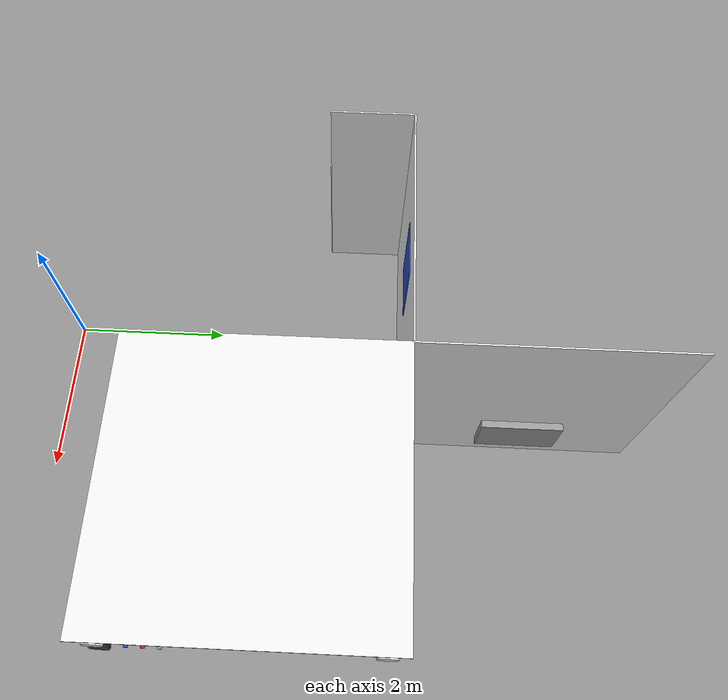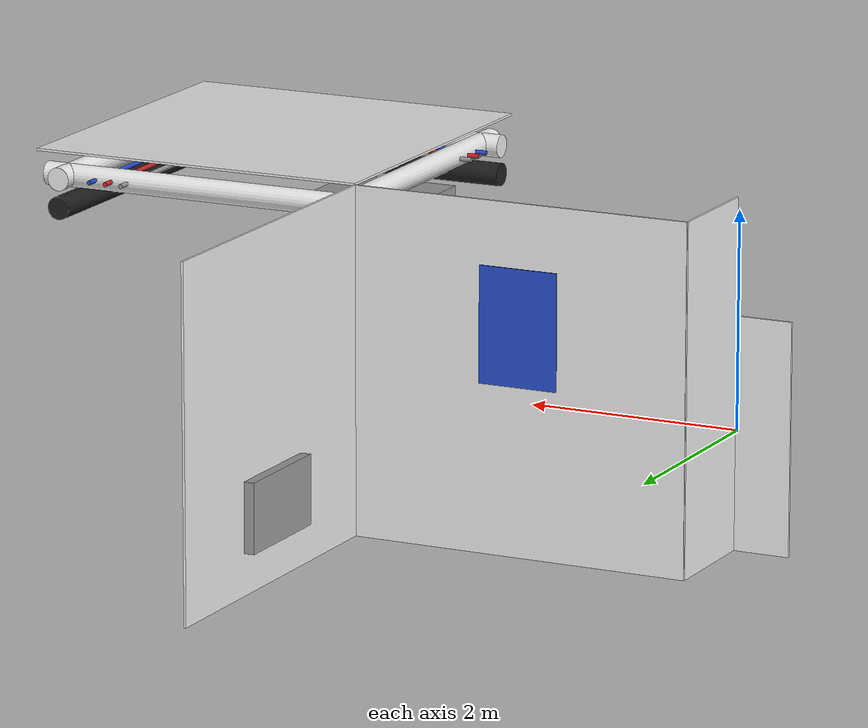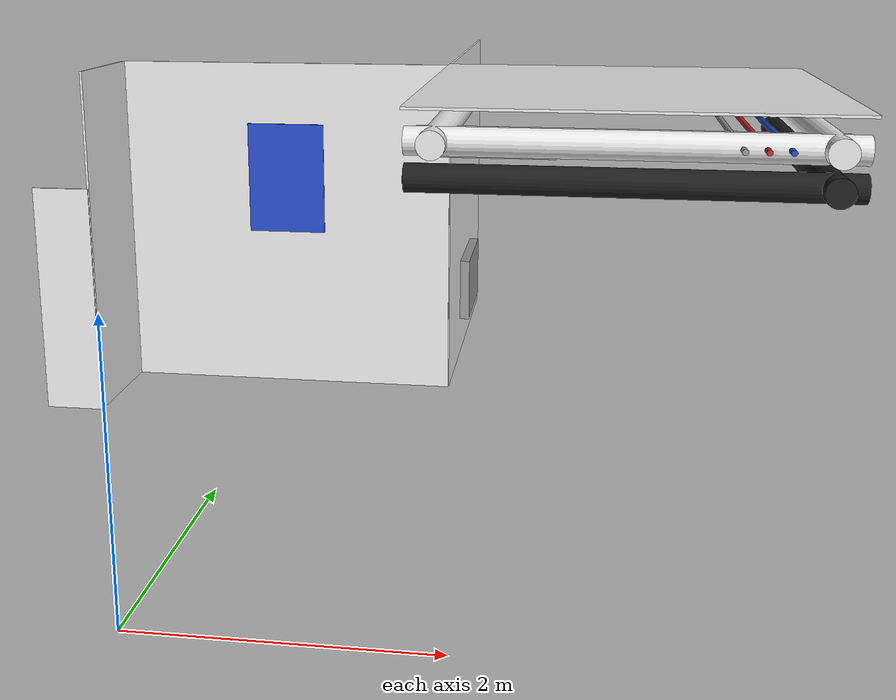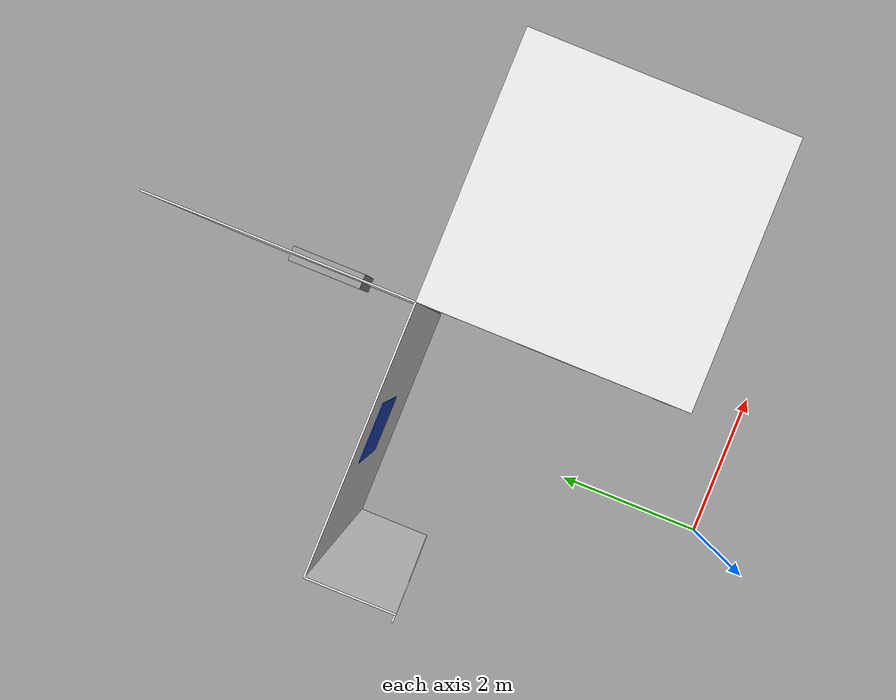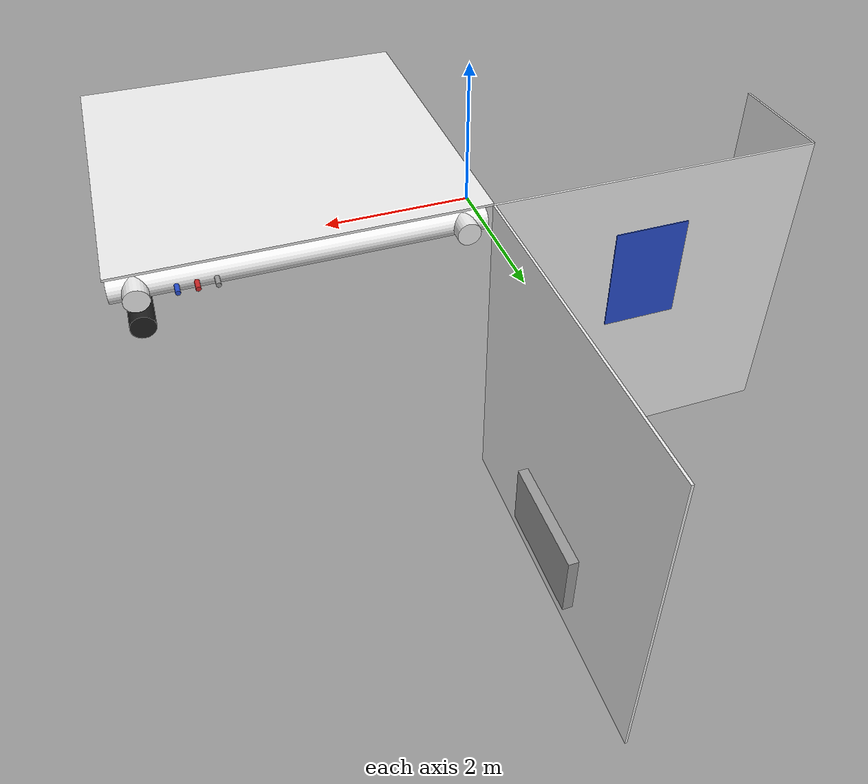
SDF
<sdf version="1.6">
 <world name="default">
  <model name="wall_front_0_1_0_2">
   <static>1</static>
   <pose>0.0 4.5 1.5 0.0 0.0 0.0</pose>
   <link name="link">
    <collision name="collision"><geometry><box><size>3.0 0.02 3.0</size></box></geometry></collision>
    <visual name="visual">
     <material>
      <script><name>Gazebo/White</name><uri>file://media/materials/scripts/gazebo.material</uri></script>
     </material>
     <geometry><box><size>3.0 0.02 3.0</size></box></geometry>
    </visual>
   </link>
  </model>
  <model name="panel_0_1_0_2">
   <static>1</static>
   <pose>0.0 4.5 1.95 0.0 0.0 1.57</pose>
   <link name="link">
    <collision name="collision"><geometry><box><size>0.04 0.7 1</size></box></geometry></collision>
    <visual name="visual">
     <material>
      <script><name>Gazebo/Blue</name><uri>file://media/materials/scripts/gazebo.material</uri></script>
     </material>
     <geometry><box><size>0.04 0.7 1</size></box></geometry>
    </visual>
   </link>
  </model>
  <model name="wall_left_front_left_0_1_0_2">
   <static>1</static>
   <pose>-1.5 4.0 1.5 0.0 0.0 1.57</pose>
   <link name="link">
    <collision name="collision"><geometry><box><size>1.0 0.02 3.0</size></box></geometry></collision>
    <visual name="visual">
     <material>
      <script><name>Gazebo/White</name><uri>file://media/materials/scripts/gazebo.material</uri></script>
     </material>
     <geometry><box><size>1.0 0.02 3.0</size></box></geometry>
    </visual>
   </link>
  </model>
  <model name="wall_left_inside_left_0_1_0_2">
   <static>1</static>
   <pose>-1.75 3.5 1.0 0.0 0.0 0.0</pose>
   <link name="link">
    <collision name="collision"><geometry><box><size>0.5 0.02 2</size></box></geometry></collision>
    <visual name="visual">
     <material>
      <script><name>Gazebo/White</name><uri>file://media/materials/scripts/gazebo.material</uri></script>
     </material>
     <geometry><box><size>0.5 0.02 2</size></box></geometry>
    </visual>
   </link>
  </model>
  <model name="wall_top_1_1_0_3">
   <static>1</static>
   <pose>3.0 3.0 3.0 1.57 0.0 -1.57</pose>
   <link name="link">
    <collision name="collision"><geometry><box><size>3.0 0.02 3.0</size></box></geometry></collision>
    <visual name="visual">
     <material>
      <script><name>Gazebo/White</name><uri>file://media/materials/scripts/gazebo.material</uri></script>
     </material>
     <geometry><box><size>3.0 0.02 3.0</size></box></geometry>
    </visual>
   </link>
  </model>
  <model name="ceiling_1_1_1_0_3">
   <pose>2.0 3.0 2.55 0.0 0.0 -1.57</pose>
   <link name="link_1">
    <visual name="visual">
     <geometry><box><size>0.8 1 0.1</size></box></geometry>
     <material>
      <script><uri>file://media/materials/scripts/gazebo.material</uri><name>Gazebo/Grey</name></script>
     </material>
    </visual>
    <collision name="collision"><geometry><box><size>0.8 1 0.1</size></box></geometry></collision>
   </link>
   <static>1</static>
  </model>
  <model name="white_pipe_left_1_1_0_3">
   <static>1</static>
   <pose>3.0 3.0 2.76 0.0 0.0 -1.57</pose>
   <link name="link_0">
    <visual name="visual">
     <pose>-1.3 0 0 1.57 0 0</pose>
     <geometry><cylinder><radius>0.1</radius><length>3.0</length></cylinder></geometry>
     <material>
      <script><uri>file://media/materials/scripts/gazebo.material</uri><name>Gazebo/White</name></script>
     </material>
    </visual>
    <collision name="collision">
     <pose>-1.3 0 0 1.57 0 0</pose>
     <geometry><cylinder><radius>0.1</radius><length>3.0</length></cylinder></geometry>
    </collision>
   </link>
  </model>
  <model name="white_pipe_right_1_1_0_3">
   <static>1</static>
   <pose>3.0 3.0 2.76 0.0 0.0 -1.57</pose>
   <link name="link_0">
    <visual name="visual">
     <pose>1.3 0 0 1.57 0 0</pose>
     <geometry><cylinder><radius>0.1</radius><length>3.0</length></cylinder></geometry>
     <material>
      <script><uri>file://media/materials/scripts/gazebo.material</uri><name>Gazebo/White</name></script>
     </material>
    </visual>
    <collision name="collision">
     <pose>1.3 0 0 1.57 0 0</pose>
     <geometry><cylinder><radius>0.1</radius><length>3.0</length></cylinder></geometry>
    </collision>
   </link>
  </model>
  <model name="black_pipe_right_1_1_0_3">
   <static>1</static>
   <pose>3.0 3.0 2.76 0.0 0.0 -1.57</pose>
   <link name="link_0">
    <visual name="visual">
     <pose>1.3 0 -0.25 1.57 0 0</pose>
     <geometry><cylinder><radius>0.1</radius><length>3.0</length></cylinder></geometry>
     <material>
      <script><uri>file://media/materials/scripts/gazebo.material</uri><name>Gazebo/Black</name></script>
     </material>
    </visual>
    <collision name="collision">
     <pose>1.3 0 -0.25 1.57 0 0</pose>
     <geometry><cylinder><radius>0.1</radius><length>3.0</length></cylinder></geometry>
    </collision>
   </link>
  </model>
  <model name="grey_pipe_right_1_1_0_3">
   <static>1</static>
   <pose>3.0 3.0 2.76 0.0 0.0 -1.57</pose>
   <link name="link_0">
    <visual name="visual">
     <pose>0.7 0 0 1.57 0 0</pose>
     <geometry><cylinder><radius>0.02</radius><length>3.0</length></cylinder></geometry>
     <material>
      <script><uri>file://media/materials/scripts/gazebo.material</uri><name>Gazebo/Grey</name></script>
     </material>
    </visual>
    <collision name="collision">
     <pose>0.7 0 0 1.57 0 0</pose>
     <geometry><cylinder><radius>0.02</radius><length>3.0</length></cylinder></geometry>
    </collision>
   </link>
  </model>
  <model name="red_pipe_right_1_1_0_3">
   <static>1</static>
   <pose>3.0 3.0 2.76 0.0 0.0 -1.57</pose>
   <link name="link_0">
    <visual name="visual">
     <pose>0.85 0 0 1.57 0 0</pose>
     <geometry><cylinder><radius>0.02</radius><length>3.0</length></cylinder></geometry>
     <material>
      <script><uri>file://media/materials/scripts/gazebo.material</uri><name>Gazebo/Red</name></script>
     </material>
    </visual>
    <collision name="collision">
     <pose>0.85 0 0 1.57 0 0</pose>
     <geometry><cylinder><radius>0.02</radius><length>3.0</length></cylinder></geometry>
    </collision>
   </link>
  </model>
  <model name="blue_pipe_right_1_1_0_3">
   <static>1</static>
   <pose>3.0 3.0 2.76 0.0 0.0 -1.57</pose>
   <link name="link_0">
    <visual name="visual">
     <pose>1 0 0 1.57 0 0</pose>
     <geometry><cylinder><radius>0.02</radius><length>3.0</length></cylinder></geometry>
     <material>
      <script><uri>file://media/materials/scripts/gazebo.material</uri><name>Gazebo/Blue</name></script>
     </material>
    </visual>
    <collision name="collision">
     <pose>1 0 0 1.57 0 0</pose>
     <geometry><cylinder><radius>0.02</radius><length>3.0</length></cylinder></geometry>
    </collision>
   </link>
  </model>
  <model name="white_pipe_left_1_1_1_0_3">
   <static>1</static>
   <pose>3.0 3.0 2.76 0.0 0.0 0.0</pose>
   <link name="link_0">
    <visual name="visual">
     <pose>-1.3 0 0 1.57 0 0</pose>
     <geometry><cylinder><radius>0.1</radius><length>3.0</length></cylinder></geometry>
     <material>
      <script><uri>file://media/materials/scripts/gazebo.material</uri><name>Gazebo/White</name></script>
     </material>
    </visual>
    <collision name="collision">
     <pose>-1.3 0 0 1.57 0 0</pose>
     <geometry><cylinder><radius>0.1</radius><length>3.0</length></cylinder></geometry>
    </collision>
   </link>
  </model>
  <model name="white_pipe_right_1_1_1_0_3">
   <static>1</static>
   <pose>3.0 3.0 2.76 0.0 0.0 0.0</pose>
   <link name="link_0">
    <visual name="visual">
     <pose>1.3 0 0 1.57 0 0</pose>
     <geometry><cylinder><radius>0.1</radius><length>3.0</length></cylinder></geometry>
     <material>
      <script><uri>file://media/materials/scripts/gazebo.material</uri><name>Gazebo/White</name></script>
     </material>
    </visual>
    <collision name="collision">
     <pose>1.3 0 0 1.57 0 0</pose>
     <geometry><cylinder><radius>0.1</radius><length>3.0</length></cylinder></geometry>
    </collision>
   </link>
  </model>
  <model name="black_pipe_right_1_1_1_0_3">
   <static>1</static>
   <pose>3.0 3.0 2.76 0.0 0.0 0.0</pose>
   <link name="link_0">
    <visual name="visual">
     <pose>1.3 0 -0.25 1.57 0 0</pose>
     <geometry><cylinder><radius>0.1</radius><length>3.0</length></cylinder></geometry>
     <material>
      <script><uri>file://media/materials/scripts/gazebo.material</uri><name>Gazebo/Black</name></script>
     </material>
    </visual>
    <collision name="collision">
     <pose>1.3 0 -0.25 1.57 0 0</pose>
     <geometry><cylinder><radius>0.1</radius><length>3.0</length></cylinder></geometry>
    </collision>
   </link>
  </model>
  <model name="grey_pipe_right_1_1_1_0_3">
   <static>1</static>
   <pose>3.0 3.0 2.76 0.0 0.0 0.0</pose>
   <link name="link_0">
    <visual name="visual">
     <pose>0.7 0 0 1.57 0 0</pose>
     <geometry><cylinder><radius>0.02</radius><length>3.0</length></cylinder></geometry>
     <material>
      <script><uri>file://media/materials/scripts/gazebo.material</uri><name>Gazebo/Grey</name></script>
     </material>
    </visual>
    <collision name="collision">
     <pose>0.7 0 0 1.57 0 0</pose>
     <geometry><cylinder><radius>0.02</radius><length>3.0</length></cylinder></geometry>
    </collision>
   </link>
  </model>
  <model name="red_pipe_right_1_1_1_0_3">
   <static>1</static>
   <pose>3.0 3.0 2.76 0.0 0.0 0.0</pose>
   <link name="link_0">
    <visual name="visual">
     <pose>0.85 0 0 1.57 0 0</pose>
     <geometry><cylinder><radius>0.02</radius><length>3.0</length></cylinder></geometry>
     <material>
      <script><uri>file://media/materials/scripts/gazebo.material</uri><name>Gazebo/Red</name></script>
     </material>
    </visual>
    <collision name="collision">
     <pose>0.85 0 0 1.57 0 0</pose>
     <geometry><cylinder><radius>0.02</radius><length>3.0</length></cylinder></geometry>
    </collision>
   </link>
  </model>
  <model name="blue_pipe_right_1_1_1_0_3">
   <static>1</static>
   <pose>3.0 3.0 2.76 0.0 0.0 0.0</pose>
   <link name="link_0">
    <visual name="visual">
     <pose>1 0 0 1.57 0 0</pose>
     <geometry><cylinder><radius>0.02</radius><length>3.0</length></cylinder></geometry>
     <material>
      <script><uri>file://media/materials/scripts/gazebo.material</uri><name>Gazebo/Blue</name></script>
     </material>
    </visual>
    <collision name="collision">
     <pose>1 0 0 1.57 0 0</pose>
     <geometry><cylinder><radius>0.02</radius><length>3.0</length></cylinder></geometry>
    </collision>
   </link>
  </model>
  <model name="wall_left_1_2_0_2">
   <static>1</static>
   <pose>1.5 6.0 1.5 0.0 0.0 1.57</pose>
   <link name="link">
    <collision name="collision"><geometry><box><size>3.0 0.02 3.0</size></box></geometry></collision>
    <visual name="visual">
     <material>
      <script><name>Gazebo/White</name><uri>file://media/materials/scripts/gazebo.material</uri></script>
     </material>
     <geometry><box><size>3.0 0.02 3.0</size></box></geometry>
    </visual>
   </link>
  </model>
  <model name="panel_1_2_0_2">
   <static>1</static>
   <pose>1.5 6.0 0.66 0.0 0.0 0.0</pose>
   <link name="link">
    <collision name="collision"><geometry><box><size>0.2 1 0.6</size></box></geometry></collision>
    <visual name="visual">
     <material>
      <script><name>Gazebo/Grey</name><uri>file://media/materials/scripts/gazebo.material</uri></script>
     </material>
     <geometry><box><size>0.2 1 0.6</size></box></geometry>
    </visual>
   </link>
  </model>
 </world>
</sdf>
